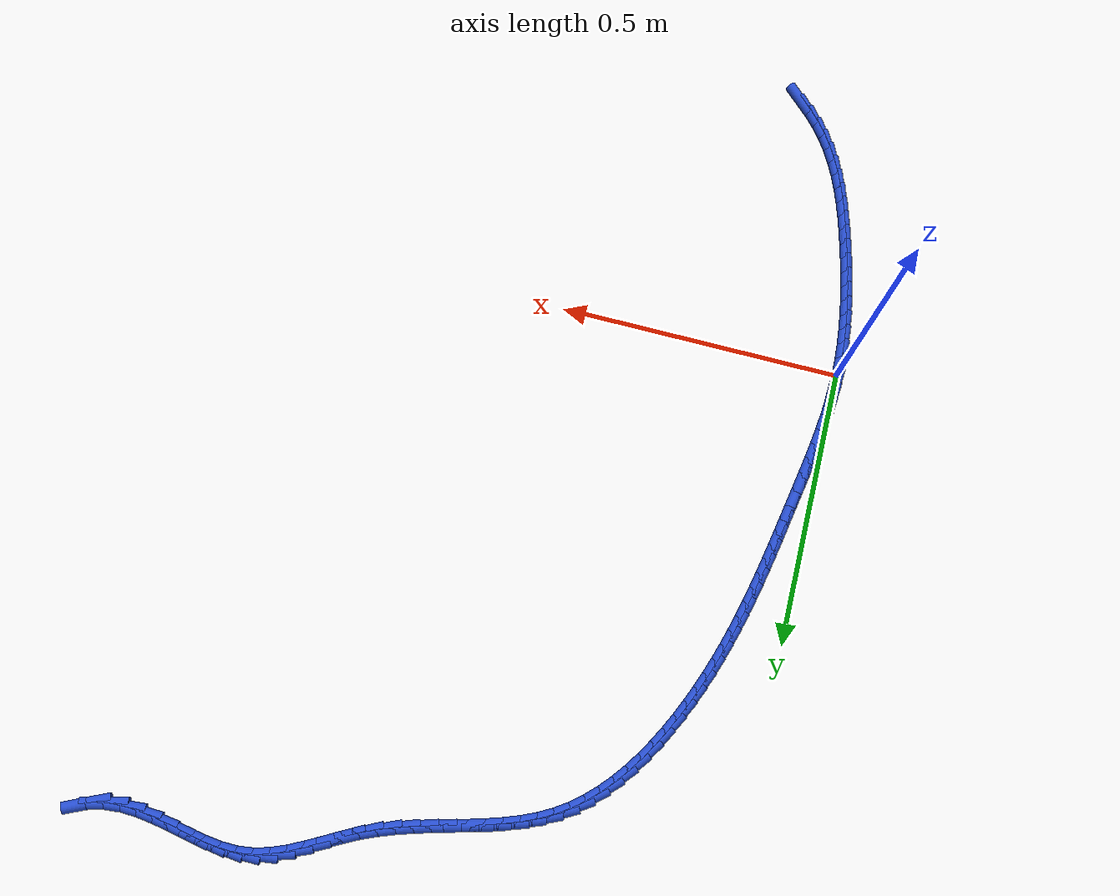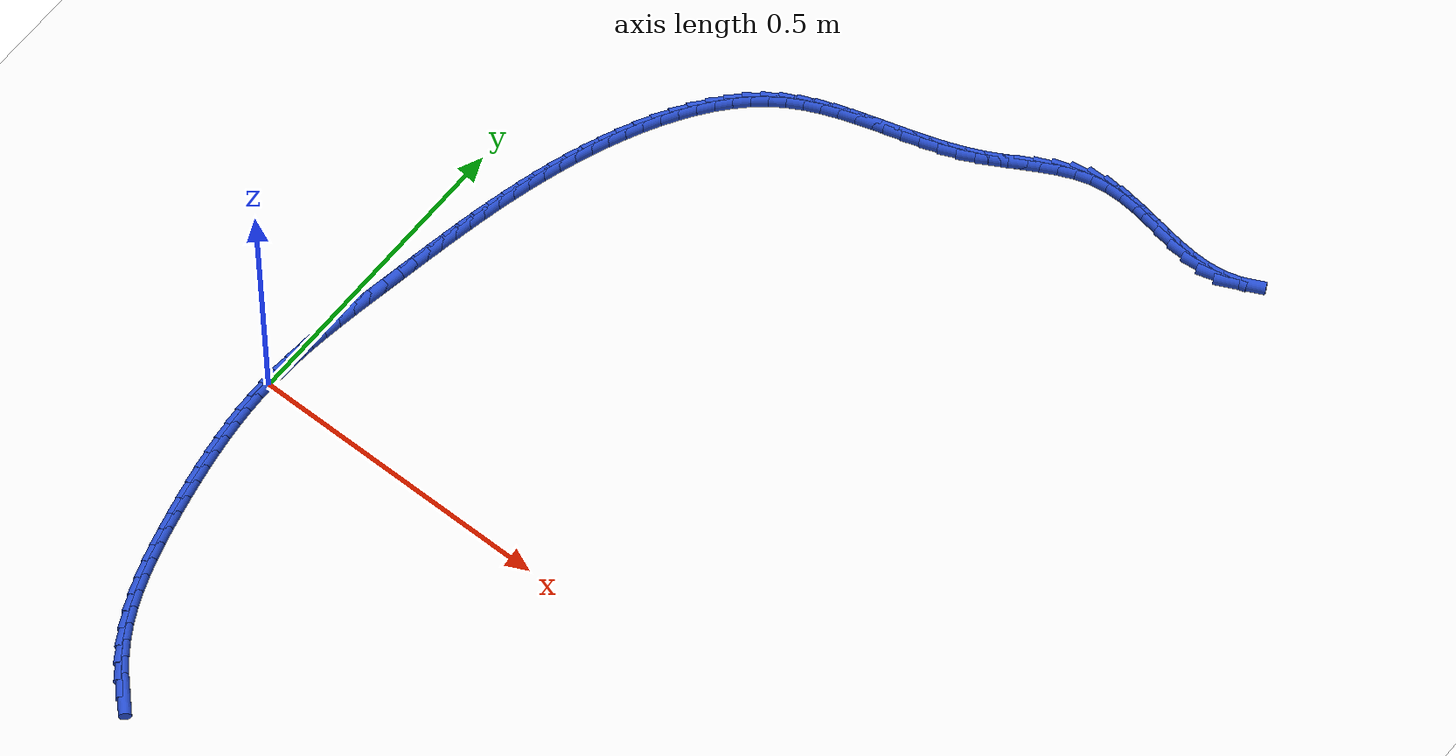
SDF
<sdf version="1.6">
 <world name="default">
  <model name="ground_plane">
   <static>1</static>
   <link name="link">
    <collision name="collision">
     <geometry><plane><normal>0 0 1</normal><size>100 100</size></plane></geometry>
     <surface><friction><ode><mu>100</mu><mu2>50</mu2></ode></friction></surface>
    </collision>
    <visual name="visual">
     <cast_shadows>0</cast_shadows>
     <geometry><plane><normal>0 0 1</normal><size>100 100</size></plane></geometry>
     <material>
      <script><uri>file://media/materials/scripts/gazebo.material</uri><name>Gazebo/WhiteGlow</name></script>
     </material>
    </visual>
   </link>
  </model>
  <model name="line">
   <link name="link_0">
    <pose>2.6020852139652106e-18 -1.249000902703301e-16 0.01 0 1.57 1.5399630987236792</pose>
    <collision name="collision">
     <geometry><cylinder><radius>0.01</radius><length>0.08</length></cylinder></geometry>
    </collision>
    <visual name="visual">
     <material>
      <script><name>Gazebo/Blue</name><uri>file://media/materials/scripts/gazebo.material</uri></script>
     </material>
     <geometry><cylinder><radius>0.01</radius><length>0.08</length></cylinder></geometry>
    </visual>
   </link>
   <link name="link_1">
    <pose>0.0008660622261048055 0.028079698793367122 0.01 0 1.57 1.5052058898935707</pose>
    <collision name="collision">
     <geometry><cylinder><radius>0.01</radius><length>0.08</length></cylinder></geometry>
    </collision>
    <visual name="visual">
     <material>
      <script><name>Gazebo/Blue</name><uri>file://media/materials/scripts/gazebo.material</uri></script>
     </material>
     <geometry><cylinder><radius>0.01</radius><length>0.08</length></cylinder></geometry>
    </visual>
   </link>
   <link name="link_2">
    <pose>0.0027115590458533156 0.05617601344190277 0.01 0 1.57 1.4752069059453266</pose>
    <collision name="collision">
     <geometry><cylinder><radius>0.01</radius><length>0.08</length></cylinder></geometry>
    </collision>
    <visual name="visual">
     <material>
      <script><name>Gazebo/Blue</name><uri>file://media/materials/scripts/gazebo.material</uri></script>
     </material>
     <geometry><cylinder><radius>0.01</radius><length>0.08</length></cylinder></geometry>
    </visual>
   </link>
   <link name="link_3">
    <pose>0.005406133760680554 0.08427915087893992 0.01 0 1.57 1.4499196222061872</pose>
    <collision name="collision">
     <geometry><cylinder><radius>0.01</radius><length>0.08</length></cylinder></geometry>
    </collision>
    <visual name="visual">
     <material>
      <script><name>Gazebo/Blue</name><uri>file://media/materials/scripts/gazebo.material</uri></script>
     </material>
     <geometry><cylinder><radius>0.01</radius><length>0.08</length></cylinder></geometry>
    </visual>
   </link>
   <link name="link_4">
    <pose>0.008819429672021525 0.11237931803781168 0.01 0 1.57 1.429277018206215</pose>
    <collision name="collision">
     <geometry><cylinder><radius>0.01</radius><length>0.08</length></cylinder></geometry>
    </collision>
    <visual name="visual">
     <material>
      <script><name>Gazebo/Blue</name><uri>file://media/materials/scripts/gazebo.material</uri></script>
     </material>
     <geometry><cylinder><radius>0.01</radius><length>0.08</length></cylinder></geometry>
    </visual>
   </link>
   <link name="link_5">
    <pose>0.012821090081311251 0.1404667218518511 0.01 0 1.57 1.4132080930097983</pose>
    <collision name="collision">
     <geometry><cylinder><radius>0.01</radius><length>0.08</length></cylinder></geometry>
    </collision>
    <visual name="visual">
     <material>
      <script><name>Gazebo/Blue</name><uri>file://media/materials/scripts/gazebo.material</uri></script>
     </material>
     <geometry><cylinder><radius>0.01</radius><length>0.08</length></cylinder></geometry>
    </visual>
   </link>
   <link name="link_6">
    <pose>0.017280758289984738 0.16853156925439136 0.01 0 1.57 1.4016506264299584</pose>
    <collision name="collision">
     <geometry><cylinder><radius>0.01</radius><length>0.08</length></cylinder></geometry>
    </collision>
    <visual name="visual">
     <material>
      <script><name>Gazebo/Blue</name><uri>file://media/materials/scripts/gazebo.material</uri></script>
     </material>
     <geometry><cylinder><radius>0.01</radius><length>0.08</length></cylinder></geometry>
    </visual>
   </link>
   <link name="link_7">
    <pose>0.022068077599477005 0.19656406717876554 0.01 0 1.57 1.3945605944642037</pose>
    <collision name="collision">
     <geometry><cylinder><radius>0.01</radius><length>0.08</length></cylinder></geometry>
    </collision>
    <visual name="visual">
     <material>
      <script><name>Gazebo/Blue</name><uri>file://media/materials/scripts/gazebo.material</uri></script>
     </material>
     <geometry><cylinder><radius>0.01</radius><length>0.08</length></cylinder></geometry>
    </visual>
   </link>
   <link name="link_8">
    <pose>0.02705269131122306 0.22455442255830668 0.01 0 1.57 1.3919158162979768</pose>
    <collision name="collision">
     <geometry><cylinder><radius>0.01</radius><length>0.08</length></cylinder></geometry>
    </collision>
    <visual name="visual">
     <material>
      <script><name>Gazebo/Blue</name><uri>file://media/materials/scripts/gazebo.material</uri></script>
     </material>
     <geometry><cylinder><radius>0.01</radius><length>0.08</length></cylinder></geometry>
    </visual>
   </link>
   <link name="link_9">
    <pose>0.03210432701656352 0.2524928449966981 0.01 0 1.57 1.392048186569597</pose>
    <collision name="collision">
     <geometry><cylinder><radius>0.01</radius><length>0.08</length></cylinder></geometry>
    </collision>
    <visual name="visual">
     <material>
      <script><name>Gazebo/Blue</name><uri>file://media/materials/scripts/gazebo.material</uri></script>
     </material>
     <geometry><cylinder><radius>0.01</radius><length>0.08</length></cylinder></geometry>
    </visual>
   </link>
   <link name="link_10">
    <pose>0.03714126967113841 0.280371082421401 0.01 0 1.57 1.390479154712693</pose>
    <collision name="collision">
     <geometry><cylinder><radius>0.01</radius><length>0.08</length></cylinder></geometry>
    </collision>
    <visual name="visual">
     <material>
      <script><name>Gazebo/Blue</name><uri>file://media/materials/scripts/gazebo.material</uri></script>
     </material>
     <geometry><cylinder><radius>0.01</radius><length>0.08</length></cylinder></geometry>
    </visual>
   </link>
   <link name="link_11">
    <pose>0.04221166903717234 0.3081849969477614 0.01 0 1.57 1.3864552922551783</pose>
    <collision name="collision">
     <geometry><cylinder><radius>0.01</radius><length>0.08</length></cylinder></geometry>
    </collision>
    <visual name="visual">
     <material>
      <script><name>Gazebo/Blue</name><uri>file://media/materials/scripts/gazebo.material</uri></script>
     </material>
     <geometry><cylinder><radius>0.01</radius><length>0.08</length></cylinder></geometry>
    </visual>
   </link>
   <link name="link_12">
    <pose>0.04738515444702214 0.3359311311756189 0.01 0 1.57 1.3799682213017315</pose>
    <collision name="collision">
     <geometry><cylinder><radius>0.01</radius><length>0.08</length></cylinder></geometry>
    </collision>
    <visual name="visual">
     <material>
      <script><name>Gazebo/Blue</name><uri>file://media/materials/scripts/gazebo.material</uri></script>
     </material>
     <geometry><cylinder><radius>0.01</radius><length>0.08</length></cylinder></geometry>
    </visual>
   </link>
   <link name="link_13">
    <pose>0.05273135523304461 0.3636060277048135 0.01 0 1.57 1.3710153190737986</pose>
    <collision name="collision">
     <geometry><cylinder><radius>0.01</radius><length>0.08</length></cylinder></geometry>
    </collision>
    <visual name="visual">
     <material>
      <script><name>Gazebo/Blue</name><uri>file://media/materials/scripts/gazebo.material</uri></script>
     </material>
     <geometry><cylinder><radius>0.01</radius><length>0.08</length></cylinder></geometry>
    </visual>
   </link>
   <link name="link_14">
    <pose>0.05831990072759662 0.3912062291351849 0.01 0 1.57 1.359600944796768</pose>
    <collision name="collision">
     <geometry><cylinder><radius>0.01</radius><length>0.08</length></cylinder></geometry>
    </collision>
    <visual name="visual">
     <material>
      <script><name>Gazebo/Blue</name><uri>file://media/materials/scripts/gazebo.material</uri></script>
     </material>
     <geometry><cylinder><radius>0.01</radius><length>0.08</length></cylinder></geometry>
    </visual>
   </link>
   <link name="link_15">
    <pose>0.06422042026303498 0.4187282780665728 0.01 0 1.57 1.3457380730642046</pose>
    <collision name="collision">
     <geometry><cylinder><radius>0.01</radius><length>0.08</length></cylinder></geometry>
    </collision>
    <visual name="visual">
     <material>
      <script><name>Gazebo/Blue</name><uri>file://media/materials/scripts/gazebo.material</uri></script>
     </material>
     <geometry><cylinder><radius>0.01</radius><length>0.08</length></cylinder></geometry>
    </visual>
   </link>
   <link name="link_16">
    <pose>0.07050254317171657 0.44616871709881734 0.01 0 1.57 1.329450292412137</pose>
    <collision name="collision">
     <geometry><cylinder><radius>0.01</radius><length>0.08</length></cylinder></geometry>
    </collision>
    <visual name="visual">
     <material>
      <script><name>Gazebo/Blue</name><uri>file://media/materials/scripts/gazebo.material</uri></script>
     </material>
     <geometry><cylinder><radius>0.01</radius><length>0.08</length></cylinder></geometry>
    </visual>
   </link>
   <link name="link_17">
    <pose>0.07723589878599818 0.4735240888317581 0.01 0 1.57 1.3107740993499721</pose>
    <collision name="collision">
     <geometry><cylinder><radius>0.01</radius><length>0.08</length></cylinder></geometry>
    </collision>
    <visual name="visual">
     <material>
      <script><name>Gazebo/Blue</name><uri>file://media/materials/scripts/gazebo.material</uri></script>
     </material>
     <geometry><cylinder><radius>0.01</radius><length>0.08</length></cylinder></geometry>
    </visual>
   </link>
   <link name="link_18">
    <pose>0.08449011643823662 0.500790935865235 0.01 0 1.57 1.2897613835054031</pose>
    <collision name="collision">
     <geometry><cylinder><radius>0.01</radius><length>0.08</length></cylinder></geometry>
    </collision>
    <visual name="visual">
     <material>
      <script><name>Gazebo/Blue</name><uri>file://media/materials/scripts/gazebo.material</uri></script>
     </material>
     <geometry><cylinder><radius>0.01</radius><length>0.08</length></cylinder></geometry>
    </visual>
   </link>
   <link name="link_19">
    <pose>0.09233482546078875 0.5279658007990877 0.01 0 1.57 1.2664819603515456</pose>
    <collision name="collision">
     <geometry><cylinder><radius>0.01</radius><length>0.08</length></cylinder></geometry>
    </collision>
    <visual name="visual">
     <material>
      <script><name>Gazebo/Blue</name><uri>file://media/materials/scripts/gazebo.material</uri></script>
     </material>
     <geometry><cylinder><radius>0.01</radius><length>0.08</length></cylinder></geometry>
    </visual>
   </link>
   <link name="link_20">
    <pose>0.10083965518601146 0.5550452262331563 0.01 0 1.57 1.2410259676231075</pose>
    <collision name="collision">
     <geometry><cylinder><radius>0.01</radius><length>0.08</length></cylinder></geometry>
    </collision>
    <visual name="visual">
     <material>
      <script><name>Gazebo/Blue</name><uri>file://media/materials/scripts/gazebo.material</uri></script>
     </material>
     <geometry><cylinder><radius>0.01</radius><length>0.08</length></cylinder></geometry>
    </visual>
   </link>
   <link name="link_21">
    <pose>0.11007423494626148 0.5820257547672804 0.01 0 1.57 1.213505905597015</pose>
    <collision name="collision">
     <geometry><cylinder><radius>0.01</radius><length>0.08</length></cylinder></geometry>
    </collision>
    <visual name="visual">
     <material>
      <script><name>Gazebo/Blue</name><uri>file://media/materials/scripts/gazebo.material</uri></script>
     </material>
     <geometry><cylinder><radius>0.01</radius><length>0.08</length></cylinder></geometry>
    </visual>
   </link>
   <link name="link_22">
    <pose>0.12010819407389567 0.6089039290012996 0.01 0 1.57 1.1840580774979754</pose>
    <collision name="collision">
     <geometry><cylinder><radius>0.01</radius><length>0.08</length></cylinder></geometry>
    </collision>
    <visual name="visual">
     <material>
      <script><name>Gazebo/Blue</name><uri>file://media/materials/scripts/gazebo.material</uri></script>
     </material>
     <geometry><cylinder><radius>0.01</radius><length>0.08</length></cylinder></geometry>
    </visual>
   </link>
   <link name="link_23">
    <pose>0.13101116190127096 0.6356762915350543 0.01 0 1.57 1.152740916086234</pose>
    <collision name="collision">
     <geometry><cylinder><radius>0.01</radius><length>0.08</length></cylinder></geometry>
    </collision>
    <visual name="visual">
     <material>
      <script><name>Gazebo/Blue</name><uri>file://media/materials/scripts/gazebo.material</uri></script>
     </material>
     <geometry><cylinder><radius>0.01</radius><length>0.08</length></cylinder></geometry>
    </visual>
   </link>
   <link name="link_24">
    <pose>0.1428518289451667 0.662329922673893 0.01 0 1.57 1.1181642113383816</pose>
    <collision name="collision">
     <geometry><cylinder><radius>0.01</radius><length>0.08</length></cylinder></geometry>
    </collision>
    <visual name="visual">
     <material>
      <script><name>Gazebo/Blue</name><uri>file://media/materials/scripts/gazebo.material</uri></script>
     </material>
     <geometry><cylinder><radius>0.01</radius><length>0.08</length></cylinder></geometry>
    </visual>
   </link>
   <link name="link_25">
    <pose>0.15568588337482905 0.6887208524462017 0.01 0 1.57 1.078843472302882</pose>
    <collision name="collision">
     <geometry><cylinder><radius>0.01</radius><length>0.08</length></cylinder></geometry>
    </collision>
    <visual name="visual">
     <material>
      <script><name>Gazebo/Blue</name><uri>file://media/materials/scripts/gazebo.material</uri></script>
     </material>
     <geometry><cylinder><radius>0.01</radius><length>0.08</length></cylinder></geometry>
    </visual>
   </link>
   <link name="link_26">
    <pose>0.16955951309005005 0.7146093579449831 0.01 0 1.57 1.0341086229439806</pose>
    <collision name="collision">
     <geometry><cylinder><radius>0.01</radius><length>0.08</length></cylinder></geometry>
    </collision>
    <visual name="visual">
     <material>
      <script><name>Gazebo/Blue</name><uri>file://media/materials/scripts/gazebo.material</uri></script>
     </material>
     <geometry><cylinder><radius>0.01</radius><length>0.08</length></cylinder></geometry>
    </visual>
   </link>
   <link name="link_27">
    <pose>0.1845186892841949 0.7397535320855616 0.01 0 1.57 0.983212142931281</pose>
    <collision name="collision">
     <geometry><cylinder><radius>0.01</radius><length>0.08</length></cylinder></geometry>
    </collision>
    <visual name="visual">
     <material>
      <script><name>Gazebo/Blue</name><uri>file://media/materials/scripts/gazebo.material</uri></script>
     </material>
     <geometry><cylinder><radius>0.01</radius><length>0.08</length></cylinder></geometry>
    </visual>
   </link>
   <link name="link_28">
    <pose>0.200609383150629 0.763911467783262 0.01 0 1.57 0.9253209097011896</pose>
    <collision name="collision">
     <geometry><cylinder><radius>0.01</radius><length>0.08</length></cylinder></geometry>
    </collision>
    <visual name="visual">
     <material>
      <script><name>Gazebo/Blue</name><uri>file://media/materials/scripts/gazebo.material</uri></script>
     </material>
     <geometry><cylinder><radius>0.01</radius><length>0.08</length></cylinder></geometry>
    </visual>
   </link>
   <link name="link_29">
    <pose>0.21787756588271756 0.7868412579534092 0.01 0 1.57 0.8595546018502556</pose>
    <collision name="collision">
     <geometry><cylinder><radius>0.01</radius><length>0.08</length></cylinder></geometry>
    </collision>
    <visual name="visual">
     <material>
      <script><name>Gazebo/Blue</name><uri>file://media/materials/scripts/gazebo.material</uri></script>
     </material>
     <geometry><cylinder><radius>0.01</radius><length>0.08</length></cylinder></geometry>
    </visual>
   </link>
   <link name="link_30">
    <pose>0.23636920867382583 0.8083009955113277 0.01 0 1.57 0.7850616266130185</pose>
    <collision name="collision">
     <geometry><cylinder><radius>0.01</radius><length>0.08</length></cylinder></geometry>
    </collision>
    <visual name="visual">
     <material>
      <script><name>Gazebo/Blue</name><uri>file://media/materials/scripts/gazebo.material</uri></script>
     </material>
     <geometry><cylinder><radius>0.01</radius><length>0.08</length></cylinder></geometry>
    </visual>
   </link>
   <link name="link_31">
    <pose>0.25613028271731925 0.8280487733723427 0.01 0 1.57 0.701149060561529</pose>
    <collision name="collision">
     <geometry><cylinder><radius>0.01</radius><length>0.08</length></cylinder></geometry>
    </collision>
    <visual name="visual">
     <material>
      <script><name>Gazebo/Blue</name><uri>file://media/materials/scripts/gazebo.material</uri></script>
     </material>
     <geometry><cylinder><radius>0.01</radius><length>0.08</length></cylinder></geometry>
    </visual>
   </link>
   <link name="link_32">
    <pose>0.27720675920656296 0.8458426844517787 0.01 0 1.57 0.6076879779926697</pose>
    <collision name="collision">
     <geometry><cylinder><radius>0.01</radius><length>0.08</length></cylinder></geometry>
    </collision>
    <visual name="visual">
     <material>
      <script><name>Gazebo/Blue</name><uri>file://media/materials/scripts/gazebo.material</uri></script>
     </material>
     <geometry><cylinder><radius>0.01</radius><length>0.08</length></cylinder></geometry>
    </visual>
   </link>
   <link name="link_33">
    <pose>0.2996424998387554 0.8614463604788467 0.01 0 1.57 0.5145400947235713</pose>
    <collision name="collision">
     <geometry><cylinder><radius>0.01</radius><length>0.08</length></cylinder></geometry>
    </collision>
    <visual name="visual">
     <material>
      <script><name>Gazebo/Blue</name><uri>file://media/materials/scripts/gazebo.material</uri></script>
     </material>
     <geometry><cylinder><radius>0.01</radius><length>0.08</length></cylinder></geometry>
    </visual>
   </link>
   <link name="link_34">
    <pose>0.32338739491439905 0.8748701698609983 0.01 0 1.57 0.436171864998613</pose>
    <collision name="collision">
     <geometry><cylinder><radius>0.01</radius><length>0.08</length></cylinder></geometry>
    </collision>
    <visual name="visual">
     <material>
      <script><name>Gazebo/Blue</name><uri>file://media/materials/scripts/gazebo.material</uri></script>
     </material>
     <geometry><cylinder><radius>0.01</radius><length>0.08</length></cylinder></geometry>
    </visual>
   </link>
   <link name="link_35">
    <pose>0.3482618510657596 0.8864644607368619 0.01 0 1.57 0.37427692011915925</pose>
    <collision name="collision">
     <geometry><cylinder><radius>0.01</radius><length>0.08</length></cylinder></geometry>
    </collision>
    <visual name="visual">
     <material>
      <script><name>Gazebo/Blue</name><uri>file://media/materials/scripts/gazebo.material</uri></script>
     </material>
     <geometry><cylinder><radius>0.01</radius><length>0.08</length></cylinder></geometry>
    </visual>
   </link>
   <link name="link_36">
    <pose>0.37407683338930503 0.8966043714819051 0.01 0 1.57 0.3286852421767178</pose>
    <collision name="collision">
     <geometry><cylinder><radius>0.01</radius><length>0.08</length></cylinder></geometry>
    </collision>
    <visual name="visual">
     <material>
      <script><name>Gazebo/Blue</name><uri>file://media/materials/scripts/gazebo.material</uri></script>
     </material>
     <geometry><cylinder><radius>0.01</radius><length>0.08</length></cylinder></geometry>
    </visual>
   </link>
   <link name="link_37">
    <pose>0.40064330698150313 0.9056650404715947 0.01 0 1.57 0.29880877972297987</pose>
    <collision name="collision">
     <geometry><cylinder><radius>0.01</radius><length>0.08</length></cylinder></geometry>
    </collision>
    <visual name="visual">
     <material>
      <script><name>Gazebo/Blue</name><uri>file://media/materials/scripts/gazebo.material</uri></script>
     </material>
     <geometry><cylinder><radius>0.01</radius><length>0.08</length></cylinder></geometry>
    </visual>
   </link>
   <link name="link_38">
    <pose>0.42777223693882266 0.9140216060813987 0.01 0 1.57 0.2839978853599156</pose>
    <collision name="collision">
     <geometry><cylinder><radius>0.01</radius><length>0.08</length></cylinder></geometry>
    </collision>
    <visual name="visual">
     <material>
      <script><name>Gazebo/Blue</name><uri>file://media/materials/scripts/gazebo.material</uri></script>
     </material>
     <geometry><cylinder><radius>0.01</radius><length>0.08</length></cylinder></geometry>
    </visual>
   </link>
   <link name="link_39">
    <pose>0.45527458835773127 0.922049206686784 0.01 0 1.57 0.2837433595560888</pose>
    <collision name="collision">
     <geometry><cylinder><radius>0.01</radius><length>0.08</length></cylinder></geometry>
    </collision>
    <visual name="visual">
     <material>
      <script><name>Gazebo/Blue</name><uri>file://media/materials/scripts/gazebo.material</uri></script>
     </material>
     <geometry><cylinder><radius>0.01</radius><length>0.08</length></cylinder></geometry>
    </visual>
   </link>
   <link name="link_40">
    <pose>0.4829613263346972 0.9301229806632175 0.01 0 1.57 0.2977569081685537</pose>
    <collision name="collision">
     <geometry><cylinder><radius>0.01</radius><length>0.08</length></cylinder></geometry>
    </collision>
    <visual name="visual">
     <material>
      <script><name>Gazebo/Blue</name><uri>file://media/materials/scripts/gazebo.material</uri></script>
     </material>
     <geometry><cylinder><radius>0.01</radius><length>0.08</length></cylinder></geometry>
    </visual>
   </link>
   <link name="link_41">
    <pose>0.5106434159661885 0.9386180663861671 0.01 0 1.57 0.3259594965262889</pose>
    <collision name="collision">
     <geometry><cylinder><radius>0.01</radius><length>0.08</length></cylinder></geometry>
    </collision>
    <visual name="visual">
     <material>
      <script><name>Gazebo/Blue</name><uri>file://media/materials/scripts/gazebo.material</uri></script>
     </material>
     <geometry><cylinder><radius>0.01</radius><length>0.08</length></cylinder></geometry>
    </visual>
   </link>
   <link name="link_42">
    <pose>0.5381318223486733 0.9479096022310995 0.01 0 1.57 0.3683900130742555</pose>
    <collision name="collision">
     <geometry><cylinder><radius>0.01</radius><length>0.08</length></cylinder></geometry>
    </collision>
    <visual name="visual">
     <material>
      <script><name>Gazebo/Blue</name><uri>file://media/materials/scripts/gazebo.material</uri></script>
     </material>
     <geometry><cylinder><radius>0.01</radius><length>0.08</length></cylinder></geometry>
    </visual>
   </link>
   <link name="link_43">
    <pose>0.5652375105786197 0.9583727265734825 0.01 0 1.57 0.4250229659217246</pose>
    <collision name="collision">
     <geometry><cylinder><radius>0.01</radius><length>0.08</length></cylinder></geometry>
    </collision>
    <visual name="visual">
     <material>
      <script><name>Gazebo/Blue</name><uri>file://media/materials/scripts/gazebo.material</uri></script>
     </material>
     <geometry><cylinder><radius>0.01</radius><length>0.08</length></cylinder></geometry>
    </visual>
   </link>
   <link name="link_44">
    <pose>0.5917715325226953 0.9703823120772729 0.01 0 1.57 0.48482583229953596</pose>
    <collision name="collision">
     <geometry><cylinder><radius>0.01</radius><length>0.08</length></cylinder></geometry>
    </collision>
    <visual name="visual">
     <material>
      <script><name>Gazebo/Blue</name><uri>file://media/materials/scripts/gazebo.material</uri></script>
     </material>
     <geometry><cylinder><radius>0.01</radius><length>0.08</length></cylinder></geometry>
    </visual>
   </link>
   <link name="link_45">
    <pose>0.6176437182639088 0.9840107484211857 0.01 0 1.57 0.5166696406512757</pose>
    <collision name="collision">
     <geometry><cylinder><radius>0.01</radius><length>0.08</length></cylinder></geometry>
    </collision>
    <visual name="visual">
     <material>
      <script><name>Gazebo/Blue</name><uri>file://media/materials/scripts/gazebo.material</uri></script>
     </material>
     <geometry><cylinder><radius>0.01</radius><length>0.08</length></cylinder></geometry>
    </visual>
   </link>
   <link name="link_46">
    <pose>0.6430524878871661 0.9984466923262147 0.01 0 1.57 0.5153607486543597</pose>
    <collision name="collision">
     <geometry><cylinder><radius>0.01</radius><length>0.08</length></cylinder></geometry>
    </collision>
    <visual name="visual">
     <material>
      <script><name>Gazebo/Blue</name><uri>file://media/materials/scripts/gazebo.material</uri></script>
     </material>
     <geometry><cylinder><radius>0.01</radius><length>0.08</length></cylinder></geometry>
    </visual>
   </link>
   <link name="link_47">
    <pose>0.6682486837446736 1.0127182707478488 0.01 0 1.57 0.4799377684791751</pose>
    <collision name="collision">
     <geometry><cylinder><radius>0.01</radius><length>0.08</length></cylinder></geometry>
    </collision>
    <visual name="visual">
     <material>
      <script><name>Gazebo/Blue</name><uri>file://media/materials/scripts/gazebo.material</uri></script>
     </material>
     <geometry><cylinder><radius>0.01</radius><length>0.08</length></cylinder></geometry>
    </visual>
   </link>
   <link name="link_48">
    <pose>0.6934831481886377 1.0258536106415768 0.01 0 1.57 0.4078192004718096</pose>
    <collision name="collision">
     <geometry><cylinder><radius>0.01</radius><length>0.08</length></cylinder></geometry>
    </collision>
    <visual name="visual">
     <material>
      <script><name>Gazebo/Blue</name><uri>file://media/materials/scripts/gazebo.material</uri></script>
     </material>
     <geometry><cylinder><radius>0.01</radius><length>0.08</length></cylinder></geometry>
    </visual>
   </link>
   <link name="link_49">
    <pose>0.7190067235712646 1.0368808389628883 0.01 0 1.57 0.29596275547812606</pose>
    <collision name="collision">
     <geometry><cylinder><radius>0.01</radius><length>0.08</length></cylinder></geometry>
    </collision>
    <visual name="visual">
     <material>
      <script><name>Gazebo/Blue</name><uri>file://media/materials/scripts/gazebo.material</uri></script>
     </material>
     <geometry><cylinder><radius>0.01</radius><length>0.08</length></cylinder></geometry>
    </visual>
   </link>
   <link name="link_50">
    <pose>0.7450702522447605 1.044828082667271 0.01 0 1.57 0.14664558138641834</pose>
    <collision name="collision">
     <geometry><cylinder><radius>0.01</radius><length>0.08</length></cylinder></geometry>
    </collision>
    <visual name="visual">
     <material>
      <script><name>Gazebo/Blue</name><uri>file://media/materials/scripts/gazebo.material</uri></script>
     </material>
     <geometry><cylinder><radius>0.01</radius><length>0.08</length></cylinder></geometry>
    </visual>
   </link>
   <link name="link_51">
    <pose>0.7719098493120959 1.048792449615197 0.01 0 1.57 0.005772189447190347</pose>
    <collision name="collision">
     <geometry><cylinder><radius>0.01</radius><length>0.08</length></cylinder></geometry>
    </collision>
    <visual name="visual">
     <material>
      <script><name>Gazebo/Blue</name><uri>file://media/materials/scripts/gazebo.material</uri></script>
     </material>
     <geometry><cylinder><radius>0.01</radius><length>0.08</length></cylinder></geometry>
    </visual>
   </link>
   <link name="link_52">
    <pose>0.7995308737949642 1.048951885171942 0.01 0 1.57 -0.09220637235423118</pose>
    <collision name="collision">
     <geometry><cylinder><radius>0.01</radius><length>0.08</length></cylinder></geometry>
    </collision>
    <visual name="visual">
     <material>
      <script><name>Gazebo/Blue</name><uri>file://media/materials/scripts/gazebo.material</uri></script>
     </material>
     <geometry><cylinder><radius>0.01</radius><length>0.08</length></cylinder></geometry>
    </visual>
   </link>
   <link name="link_53">
    <pose>0.8277555781311013 1.0463419869138124 0.01 0 1.57 -0.14968195095804063</pose>
    <collision name="collision">
     <geometry><cylinder><radius>0.01</radius><length>0.08</length></cylinder></geometry>
    </collision>
    <visual name="visual">
     <material>
      <script><name>Gazebo/Blue</name><uri>file://media/materials/scripts/gazebo.material</uri></script>
     </material>
     <geometry><cylinder><radius>0.01</radius><length>0.08</length></cylinder></geometry>
    </visual>
   </link>
   <link name="link_54">
    <pose>0.8564011775090994 1.0420219463686466 0.01 0 1.57 -0.1704339877435066</pose>
    <collision name="collision">
     <geometry><cylinder><radius>0.01</radius><length>0.08</length></cylinder></geometry>
    </collision>
    <visual name="visual">
     <material>
      <script><name>Gazebo/Blue</name><uri>file://media/materials/scripts/gazebo.material</uri></script>
     </material>
     <geometry><cylinder><radius>0.01</radius><length>0.08</length></cylinder></geometry>
    </visual>
   </link>
   <link name="link_55">
    <pose>0.8852848871175495 1.0370509550642826 0.01 0 1.57 -0.15638033612341326</pose>
    <collision name="collision">
     <geometry><cylinder><radius>0.01</radius><length>0.08</length></cylinder></geometry>
    </collision>
    <visual name="visual">
     <material>
      <script><name>Gazebo/Blue</name><uri>file://media/materials/scripts/gazebo.material</uri></script>
     </material>
     <geometry><cylinder><radius>0.01</radius><length>0.08</length></cylinder></geometry>
    </visual>
   </link>
   <link name="link_56">
    <pose>0.9142239221450437 1.0324882045285588 0.01 0 1.57 -0.10702265904177997</pose>
    <collision name="collision">
     <geometry><cylinder><radius>0.01</radius><length>0.08</length></cylinder></geometry>
    </collision>
    <visual name="visual">
     <material>
      <script><name>Gazebo/Blue</name><uri>file://media/materials/scripts/gazebo.material</uri></script>
     </material>
     <geometry><cylinder><radius>0.01</radius><length>0.08</length></cylinder></geometry>
    </visual>
   </link>
   <link name="link_57">
    <pose>0.9430354977801729 1.029392886289313 0.01 0 1.57 -0.01995061046230502</pose>
    <collision name="collision">
     <geometry><cylinder><radius>0.01</radius><length>0.08</length></cylinder></geometry>
    </collision>
    <visual name="visual">
     <material>
      <script><name>Gazebo/Blue</name><uri>file://media/materials/scripts/gazebo.material</uri></script>
     </material>
     <geometry><cylinder><radius>0.01</radius><length>0.08</length></cylinder></geometry>
    </visual>
   </link>
   <link name="link_58">
    <pose>0.9715368292115285 1.028824191874383 0.01 0 1.57 0.10730858101633262</pose>
    <collision name="collision">
     <geometry><cylinder><radius>0.01</radius><length>0.08</length></cylinder></geometry>
    </collision>
    <visual name="visual">
     <material>
      <script><name>Gazebo/Blue</name><uri>file://media/materials/scripts/gazebo.material</uri></script>
     </material>
     <geometry><cylinder><radius>0.01</radius><length>0.08</length></cylinder></geometry>
    </visual>
   </link>
   <link name="link_59">
    <pose>0.9995451316277022 1.0318413128116073 0.01 0 1.57 0.27328906858868746</pose>
    <collision name="collision">
     <geometry><cylinder><radius>0.01</radius><length>0.08</length></cylinder></geometry>
    </collision>
    <visual name="visual">
     <material>
      <script><name>Gazebo/Blue</name><uri>file://media/materials/scripts/gazebo.material</uri></script>
     </material>
     <geometry><cylinder><radius>0.01</radius><length>0.08</length></cylinder></geometry>
    </visual>
   </link>
   <link name="link_60">
    <pose>1.0268776876784893 1.0395026930481222 0.01 0 1.57 0.44809342578353123</pose>
    <collision name="collision">
     <geometry><cylinder><radius>0.01</radius><length>0.08</length></cylinder></geometry>
    </collision>
    <visual name="visual">
     <material>
      <script><name>Gazebo/Blue</name><uri>file://media/materials/scripts/gazebo.material</uri></script>
     </material>
     <geometry><cylinder><radius>0.01</radius><length>0.08</length></cylinder></geometry>
    </visual>
   </link>
   <link name="link_230">
    <pose>0.16595510602438732 -0.5295306972312329 0.01 0 1.57 -0.803658858266146</pose>
    <collision name="collision">
     <geometry><cylinder><radius>0.01</radius><length>0.08</length></cylinder></geometry>
    </collision>
    <visual name="visual">
     <material>
      <script><name>Gazebo/Blue</name><uri>file://media/materials/scripts/gazebo.material</uri></script>
     </material>
     <geometry><cylinder><radius>0.01</radius><length>0.08</length></cylinder></geometry>
    </visual>
   </link>
   <link name="link_231">
    <pose>0.14636258087100706 -0.5092092338889361 0.01 0 1.57 -0.8701335422550375</pose>
    <collision name="collision">
     <geometry><cylinder><radius>0.01</radius><length>0.08</length></cylinder></geometry>
    </collision>
    <visual name="visual">
     <material>
      <script><name>Gazebo/Blue</name><uri>file://media/materials/scripts/gazebo.material</uri></script>
     </material>
     <geometry><cylinder><radius>0.01</radius><length>0.08</length></cylinder></geometry>
    </visual>
   </link>
   <link name="link_232">
    <pose>0.1283072884150522 -0.487802047172362 0.01 0 1.57 -0.9490248811323987</pose>
    <collision name="collision">
     <geometry><cylinder><radius>0.01</radius><length>0.08</length></cylinder></geometry>
    </collision>
    <visual name="visual">
     <material>
      <script><name>Gazebo/Blue</name><uri>file://media/materials/scripts/gazebo.material</uri></script>
     </material>
     <geometry><cylinder><radius>0.01</radius><length>0.08</length></cylinder></geometry>
    </visual>
   </link>
   <link name="link_233">
    <pose>0.11205822900158065 -0.4651264104299286 0.01 0 1.57 -1.026935150888896</pose>
    <collision name="collision">
     <geometry><cylinder><radius>0.01</radius><length>0.08</length></cylinder></geometry>
    </collision>
    <visual name="visual">
     <material>
      <script><name>Gazebo/Blue</name><uri>file://media/materials/scripts/gazebo.material</uri></script>
     </material>
     <geometry><cylinder><radius>0.01</radius><length>0.08</length></cylinder></geometry>
    </visual>
   </link>
   <link name="link_234">
    <pose>0.09760131122041074 -0.44121844333401594 0.01 0 1.57 -1.0962674665067782</pose>
    <collision name="collision">
     <geometry><cylinder><radius>0.01</radius><length>0.08</length></cylinder></geometry>
    </collision>
    <visual name="visual">
     <material>
      <script><name>Gazebo/Blue</name><uri>file://media/materials/scripts/gazebo.material</uri></script>
     </material>
     <geometry><cylinder><radius>0.01</radius><length>0.08</length></cylinder></geometry>
    </visual>
   </link>
   <link name="link_235">
    <pose>0.08476743781219671 -0.416234094056614 0.01 0 1.57 -1.1568088488297767</pose>
    <collision name="collision">
     <geometry><cylinder><radius>0.01</radius><length>0.08</length></cylinder></geometry>
    </collision>
    <visual name="visual">
     <material>
      <script><name>Gazebo/Blue</name><uri>file://media/materials/scripts/gazebo.material</uri></script>
     </material>
     <geometry><cylinder><radius>0.01</radius><length>0.08</length></cylinder></geometry>
    </visual>
   </link>
   <link name="link_236">
    <pose>0.0733859273153704 -0.3903305354497903 0.01 0 1.57 -1.2087343411675566</pose>
    <collision name="collision">
     <geometry><cylinder><radius>0.01</radius><length>0.08</length></cylinder></geometry>
    </collision>
    <visual name="visual">
     <material>
      <script><name>Gazebo/Blue</name><uri>file://media/materials/scripts/gazebo.material</uri></script>
     </material>
     <geometry><cylinder><radius>0.01</radius><length>0.08</length></cylinder></geometry>
    </visual>
   </link>
   <link name="link_237">
    <pose>0.06328609826836369 -0.3636649403656123 0.01 0 1.57 -1.2523934564374752</pose>
    <collision name="collision">
     <geometry><cylinder><radius>0.01</radius><length>0.08</length></cylinder></geometry>
    </collision>
    <visual name="visual">
     <material>
      <script><name>Gazebo/Blue</name><uri>file://media/materials/scripts/gazebo.material</uri></script>
     </material>
     <geometry><cylinder><radius>0.01</radius><length>0.08</length></cylinder></geometry>
    </visual>
   </link>
   <link name="link_238">
    <pose>0.05429726920960849 -0.3363944816561477 0.01 0 1.57 -1.2881979255933593</pose>
    <collision name="collision">
     <geometry><cylinder><radius>0.01</radius><length>0.08</length></cylinder></geometry>
    </collision>
    <visual name="visual">
     <material>
      <script><name>Gazebo/Blue</name><uri>file://media/materials/scripts/gazebo.material</uri></script>
     </material>
     <geometry><cylinder><radius>0.01</radius><length>0.08</length></cylinder></geometry>
    </visual>
   </link>
   <link name="link_239">
    <pose>0.04624875867753668 -0.3086763321734641 0.01 0 1.57 -1.3165413092201912</pose>
    <collision name="collision">
     <geometry><cylinder><radius>0.01</radius><length>0.08</length></cylinder></geometry>
    </collision>
    <visual name="visual">
     <material>
      <script><name>Gazebo/Blue</name><uri>file://media/materials/scripts/gazebo.material</uri></script>
     </material>
     <geometry><cylinder><radius>0.01</radius><length>0.08</length></cylinder></geometry>
    </visual>
   </link>
   <link name="link_240">
    <pose>0.03896988521058031 -0.2806676647696297 0.01 0 1.57 -1.3377446893513885</pose>
    <collision name="collision">
     <geometry><cylinder><radius>0.01</radius><length>0.08</length></cylinder></geometry>
    </collision>
    <visual name="visual">
     <material>
      <script><name>Gazebo/Blue</name><uri>file://media/materials/scripts/gazebo.material</uri></script>
     </material>
     <geometry><cylinder><radius>0.01</radius><length>0.08</length></cylinder></geometry>
    </visual>
   </link>
   <link name="link_241">
    <pose>0.03228996734717087 -0.2525256522967106 0.01 0 1.57 -1.3530643345946185</pose>
    <collision name="collision">
     <geometry><cylinder><radius>0.01</radius><length>0.08</length></cylinder></geometry>
    </collision>
    <visual name="visual">
     <material>
      <script><name>Gazebo/Blue</name><uri>file://media/materials/scripts/gazebo.material</uri></script>
     </material>
     <geometry><cylinder><radius>0.01</radius><length>0.08</length></cylinder></geometry>
    </visual>
   </link>
   <link name="link_242">
    <pose>0.026065195692418917 -0.2243897181905339 0.01 0 1.57 -1.3689075496405263</pose>
    <collision name="collision">
     <geometry><cylinder><radius>0.01</radius><length>0.08</length></cylinder></geometry>
    </collision>
    <visual name="visual">
     <material>
      <script><name>Gazebo/Blue</name><uri>file://media/materials/scripts/gazebo.material</uri></script>
     </material>
     <geometry><cylinder><radius>0.01</radius><length>0.08</length></cylinder></geometry>
    </visual>
   </link>
   <link name="link_243">
    <pose>0.020314228522819232 -0.19629197347364538 0.01 0 1.57 -1.38768349064117</pose>
    <collision name="collision">
     <geometry><cylinder><radius>0.01</radius><length>0.08</length></cylinder></geometry>
    </collision>
    <visual name="visual">
     <material>
      <script><name>Gazebo/Blue</name><uri>file://media/materials/scripts/gazebo.material</uri></script>
     </material>
     <geometry><cylinder><radius>0.01</radius><length>0.08</length></cylinder></geometry>
    </visual>
   </link>
   <link name="link_244">
    <pose>0.015116471919554994 -0.16822440430271962 0.01 0 1.57 -1.4094388720428135</pose>
    <collision name="collision">
     <geometry><cylinder><radius>0.01</radius><length>0.08</length></cylinder></geometry>
    </collision>
    <visual name="visual">
     <material>
      <script><name>Gazebo/Blue</name><uri>file://media/materials/scripts/gazebo.material</uri></script>
     </material>
     <geometry><cylinder><radius>0.01</radius><length>0.08</length></cylinder></geometry>
    </visual>
   </link>
   <link name="link_245">
    <pose>0.010551437414893812 -0.14017892718235708 0.01 0 1.57 -1.4342065952657523</pose>
    <collision name="collision">
     <geometry><cylinder><radius>0.01</radius><length>0.08</length></cylinder></geometry>
    </collision>
    <visual name="visual">
     <material>
      <script><name>Gazebo/Blue</name><uri>file://media/materials/scripts/gazebo.material</uri></script>
     </material>
     <geometry><cylinder><radius>0.01</radius><length>0.08</length></cylinder></geometry>
    </visual>
   </link>
   <link name="link_246">
    <pose>0.006698636541103293 -0.11214745861715782 0.01 0 1.57 -1.462003807691029</pose>
    <collision name="collision">
     <geometry><cylinder><radius>0.01</radius><length>0.08</length></cylinder></geometry>
    </collision>
    <visual name="visual">
     <material>
      <script><name>Gazebo/Blue</name><uri>file://media/materials/scripts/gazebo.material</uri></script>
     </material>
     <geometry><cylinder><radius>0.01</radius><length>0.08</length></cylinder></geometry>
    </visual>
   </link>
   <link name="link_247">
    <pose>0.003637580830451039 -0.08412191511172222 0.01 0 1.57 -1.4928249125756852</pose>
    <collision name="collision">
     <geometry><cylinder><radius>0.01</radius><length>0.08</length></cylinder></geometry>
    </collision>
    <visual name="visual">
     <material>
      <script><name>Gazebo/Blue</name><uri>file://media/materials/scripts/gazebo.material</uri></script>
     </material>
     <geometry><cylinder><radius>0.01</radius><length>0.08</length></cylinder></geometry>
    </visual>
   </link>
   <link name="link_248">
    <pose>0.0014477818152046672 -0.05609421317065054 0.01 0 1.57 -1.5266338452548505</pose>
    <collision name="collision">
     <geometry><cylinder><radius>0.01</radius><length>0.08</length></cylinder></geometry>
    </collision>
    <visual name="visual">
     <material>
      <script><name>Gazebo/Blue</name><uri>file://media/materials/scripts/gazebo.material</uri></script>
     </material>
     <geometry><cylinder><radius>0.01</radius><length>0.08</length></cylinder></geometry>
    </visual>
   </link>
   <link name="link_249">
    <pose>0.0002087510276317815 -0.028056269298543032 0.01 0 1.57 -1.5633560226912224</pose>
    <collision name="collision">
     <geometry><cylinder><radius>0.01</radius><length>0.08</length></cylinder></geometry>
    </collision>
    <visual name="visual">
     <material>
      <script><name>Gazebo/Blue</name><uri>file://media/materials/scripts/gazebo.material</uri></script>
     </material>
     <geometry><cylinder><radius>0.01</radius><length>0.08</length></cylinder></geometry>
    </visual>
   </link>
   <link name="link_250">
    <pose>-1.3010426069826053e-17 5.551115123125783e-17 0.01 0 1.57 1.5387220619385253</pose>
    <collision name="collision">
     <geometry><cylinder><radius>0.01</radius><length>0.08</length></cylinder></geometry>
    </collision>
    <visual name="visual">
     <material>
      <script><name>Gazebo/Blue</name><uri>file://media/materials/scripts/gazebo.material</uri></script>
     </material>
     <geometry><cylinder><radius>0.01</radius><length>0.08</length></cylinder></geometry>
    </visual>
   </link>
   <link name="link_251">
    <pose>0.0009010402645768956 0.028082678220378427 0.01 0 1.57 1.4965888360600672</pose>
    <collision name="collision">
     <geometry><cylinder><radius>0.01</radius><length>0.08</length></cylinder></geometry>
    </collision>
    <visual name="visual">
     <material>
      <script><name>Gazebo/Blue</name><uri>file://media/materials/scripts/gazebo.material</uri></script>
     </material>
     <geometry><cylinder><radius>0.01</radius><length>0.08</length></cylinder></geometry>
    </visual>
   </link>
   <link name="link_252">
    <pose>0.00299138335363011 0.05619984885799185 0.01 0 1.57 1.517618904318939</pose>
    <collision name="collision">
     <geometry><cylinder><radius>0.01</radius><length>0.08</length></cylinder></geometry>
    </collision>
    <visual name="visual">
     <material>
      <script><name>Gazebo/Blue</name><uri>file://media/materials/scripts/gazebo.material</uri></script>
     </material>
     <geometry><cylinder><radius>0.01</radius><length>0.08</length></cylinder></geometry>
    </visual>
   </link>
  </model>
 </world>
</sdf>
